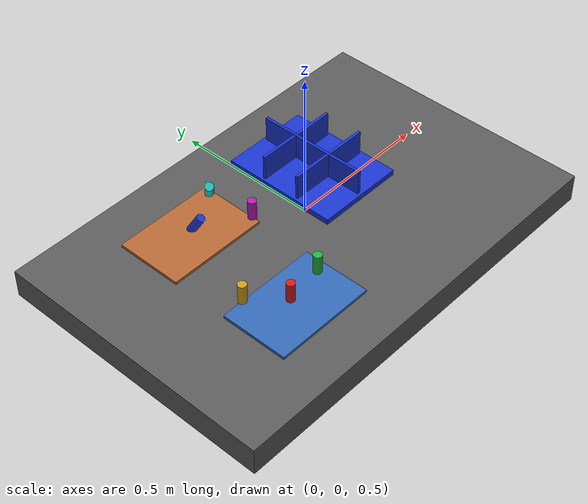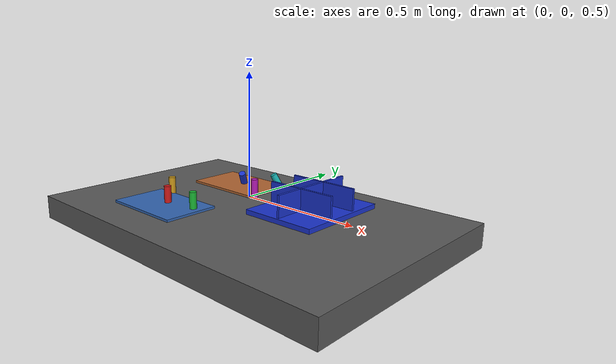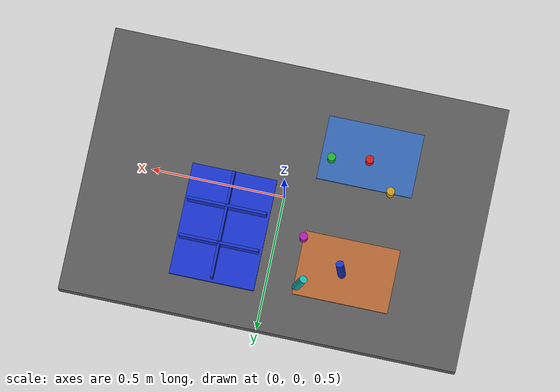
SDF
<?xml version="1.0" ?>
<sdf version="1.9">
  <!-- Standalone M1B scene.  The controller-backed Panda is spawned by the
       existing launch path; this file never alters the frozen M1A cube world. -->
  <world name="industrial_cylinder_v1">
    <physics name="bullet" type="bullet"><max_step_size>0.001</max_step_size><real_time_factor>1.0</real_time_factor></physics>
    <plugin name="gz::sim::systems::Physics" filename="gz-sim-physics-system"><engine><filename>gz-physics-bullet-featherstone-plugin</filename></engine></plugin>
    <plugin name="gz::sim::systems::UserCommands" filename="gz-sim-user-commands-system"/>
    <plugin name="gz::sim::systems::SceneBroadcaster" filename="gz-sim-scene-broadcaster-system"/>
    <plugin name="gz::sim::systems::Contact" filename="gz-sim-contact-system"/>
    <plugin name="gz::sim::systems::Sensors" filename="gz-sim-sensors-system"><render_engine>ogre2</render_engine></plugin>
    <gravity>0 0 -9.81</gravity>
    <light type="directional" name="industrial_light"><pose>0 0 5 0 0 0</pose><direction>-0.3 0.2 -0.9</direction><diffuse>0.9 0.9 0.9 1</diffuse></light>
    <model name="industrial_work_table"><static>true</static><link name="link"><pose>0 0 0.4 0 0 0</pose><collision name="collision"><geometry><box><size>1.5 1.0 0.1</size></box></geometry></collision><visual name="visual"><geometry><box><size>1.5 1.0 0.1</size></box></geometry><material><diffuse>0.35 0.35 0.35 1</diffuse></material></visual></link></model>
    <model name="camera_fixture"><static>true</static><link name="camera_rgbd"><pose>-0.80 -0.80 1.40 0 0.77 0.93</pose><sensor name="front_rgbd" type="rgbd_camera"><always_on>1</always_on><update_rate>15</update_rate><topic>/xh/camera/rgbd</topic><camera><horizontal_fov>1.047</horizontal_fov><image><width>640</width><height>480</height><format>R8G8B8</format></image><clip><near>0.1</near><far>4.0</far></clip></camera></sensor></link></model>
    <model name="incoming_zone_a"><static>true</static><link name="link"><pose>-0.28 -0.22 0.455 0 0 0</pose><visual name="visual"><geometry><box><size>0.36 0.24 0.01</size></box></geometry><material><diffuse>0.2 0.4 0.7 1</diffuse></material></visual></link></model>
    <model name="incoming_zone_b"><static>true</static><link name="link"><pose>-0.28 0.22 0.455 0 0 0</pose><visual name="visual"><geometry><box><size>0.36 0.24 0.01</size></box></geometry><material><diffuse>0.7 0.4 0.2 1</diffuse></material></visual></link></model>
    <!-- M1B_RANDOM_PARTS_BEGIN -->
    <model name="cylinder_normal_01"><pose>-0.28 -0.20 0.49 0 0 0</pose><link name="link"><inertial><mass>0.045</mass></inertial><collision name="collision"><geometry><cylinder><radius>0.015</radius><length>0.08</length></cylinder></geometry></collision><visual name="visual"><geometry><cylinder><radius>0.015</radius><length>0.08</length></cylinder></geometry><material><diffuse>0.8 0.1 0.1 1</diffuse></material></visual></link></model>
    <model name="cylinder_inverted_02"><pose>-0.14 -0.18 0.49 3.14159 0 0</pose><link name="link"><inertial><mass>0.045</mass></inertial><collision name="collision"><geometry><cylinder><radius>0.015</radius><length>0.08</length></cylinder></geometry></collision><visual name="visual"><geometry><cylinder><radius>0.015</radius><length>0.08</length></cylinder></geometry><material><diffuse>0.1 0.7 0.2 1</diffuse></material></visual></link></model>
    <model name="cylinder_tilted_03"><pose>-0.26 0.22 0.48 0.5 0.2 0.1</pose><link name="link"><inertial><mass>0.045</mass></inertial><collision name="collision"><geometry><cylinder><radius>0.015</radius><length>0.08</length></cylinder></geometry></collision><visual name="visual"><geometry><cylinder><radius>0.015</radius><length>0.08</length></cylinder></geometry><material><diffuse>0.1 0.2 0.8 1</diffuse></material></visual></link></model>
    <model name="cylinder_normal_04"><pose>-0.38 -0.10 0.49 0 0 0</pose><link name="link"><inertial><mass>0.045</mass></inertial><collision name="collision"><geometry><cylinder><radius>0.015</radius><length>0.08</length></cylinder></geometry></collision><visual name="visual"><geometry><cylinder><radius>0.015</radius><length>0.08</length></cylinder></geometry><material><diffuse>0.8 0.6 0.1 1</diffuse></material></visual></link></model>
    <model name="cylinder_inverted_05"><pose>-0.10 0.13 0.49 3.14159 0 0</pose><link name="link"><inertial><mass>0.045</mass></inertial><collision name="collision"><geometry><cylinder><radius>0.015</radius><length>0.08</length></cylinder></geometry></collision><visual name="visual"><geometry><cylinder><radius>0.015</radius><length>0.08</length></cylinder></geometry><material><diffuse>0.7 0.1 0.7 1</diffuse></material></visual></link></model>
    <model name="cylinder_tilted_06"><pose>-0.12 0.30 0.48 0.3 -0.4 0.2</pose><link name="link"><inertial><mass>0.045</mass></inertial><collision name="collision"><geometry><cylinder><radius>0.015</radius><length>0.08</length></cylinder></geometry></collision><visual name="visual"><geometry><cylinder><radius>0.015</radius><length>0.08</length></cylinder></geometry><material><diffuse>0.1 0.7 0.7 1</diffuse></material></visual></link></model>
    <!-- M1B_RANDOM_PARTS_END -->
    <model name="blue_partition_bin"><static>true</static><pose>0.20 0.15 0.45 0 0 1.57079632679</pose><link name="link"><collision name="floor"><pose>0 0 0.01 0 0 0</pose><geometry><box><size>0.42 0.32 0.02</size></box></geometry></collision><visual name="floor_visual"><pose>0 0 0.01 0 0 0</pose><geometry><box><size>0.42 0.32 0.02</size></box></geometry><material><diffuse>0.1 0.2 0.8 1</diffuse></material></visual><visual name="row_divider"><pose>0 0 0.06 0 0 0</pose><geometry><box><size>0.40 0.01 0.10</size></box></geometry><material><diffuse>0.1 0.2 0.8 1</diffuse></material></visual><visual name="col_divider_a"><pose>-0.07 0 0.06 0 0 0</pose><geometry><box><size>0.01 0.30 0.10</size></box></geometry><material><diffuse>0.1 0.2 0.8 1</diffuse></material></visual><visual name="col_divider_b"><pose>0.07 0 0.06 0 0 0</pose><geometry><box><size>0.01 0.30 0.10</size></box></geometry><material><diffuse>0.1 0.2 0.8 1</diffuse></material></visual></link></model>
    <!-- Reserved only: second table, bin transport corridor, stackable-bin
         collision volume, and second arm mounting namespace. -->
  </world>
</sdf>
